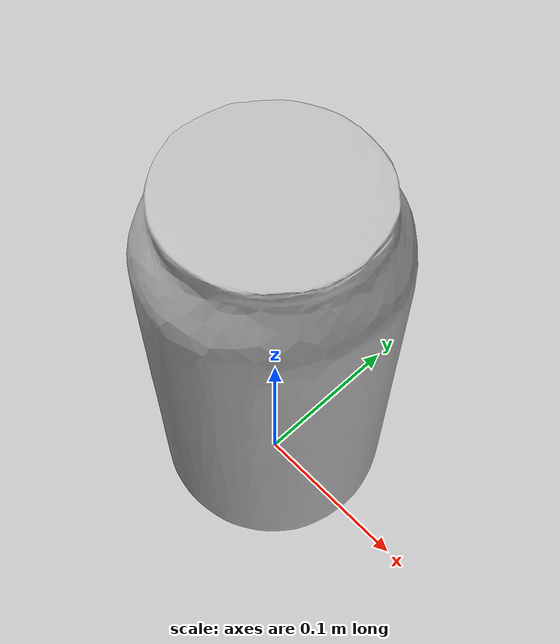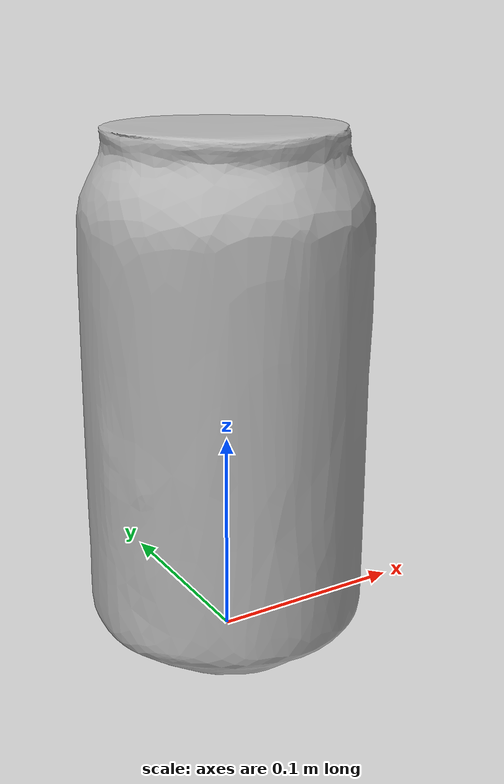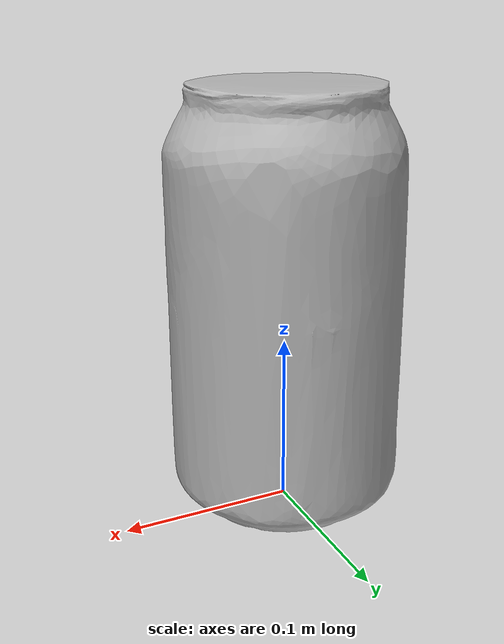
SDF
<?xml version="1.0" ?>
<sdf version="1.6" xmlns:surface_props="https://github.com/Field-Robotics-Lab/dave">
  <model name="coke_can_steel">
    <link name="link">
      <inertial>
        <pose>0 0 0 0 0 0</pose>
        <mass>1000.0</mass>
        <inertia>
          <ixx>0.083</ixx>
          <ixy>0.0</ixy>
          <ixz>0.0</ixz>
          <iyy>0.083</iyy>
          <iyz>0.0</iyz>
          <izz>0.083</izz>
        </inertia>
      </inertial>
      <collision name="collision">
        <geometry>
          <mesh>
            <uri>model://coke_can_steel/meshes/coke_can.obj</uri>
            <scale>2 2 2</scale>
          </mesh>
        </geometry>
      </collision>
      <visual name="visual">
        <geometry>
          <mesh>
            <uri>model://coke_can_steel/meshes/coke_can.obj</uri>
            <scale>2 2 2</scale>
          </mesh>
        </geometry>
      </visual>
    </link>
    <!-- Custom SDF elements for surface properties -->
    <surface_props:material>metal</surface_props:material>
    <surface_props:biofouling_rating>0</surface_props:biofouling_rating>
    <surface_props:roughness>0.0</surface_props:roughness>
  </model>
</sdf>
